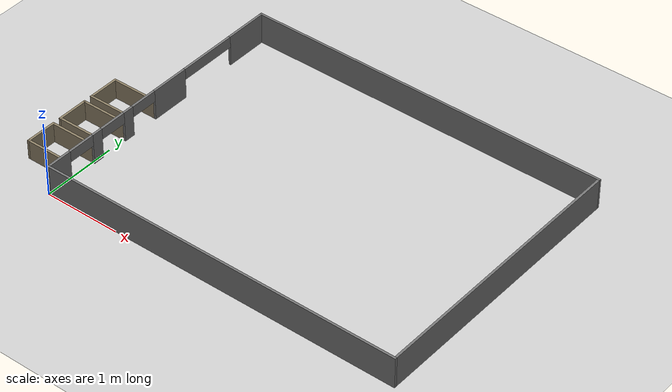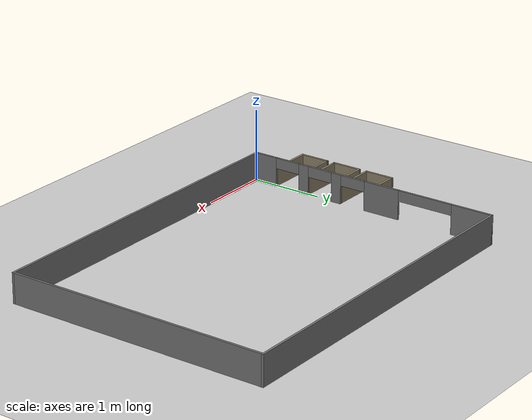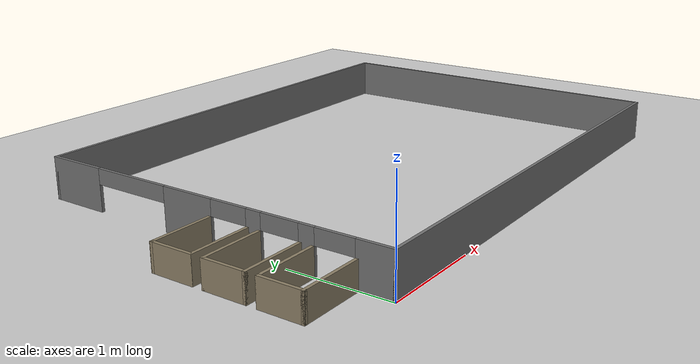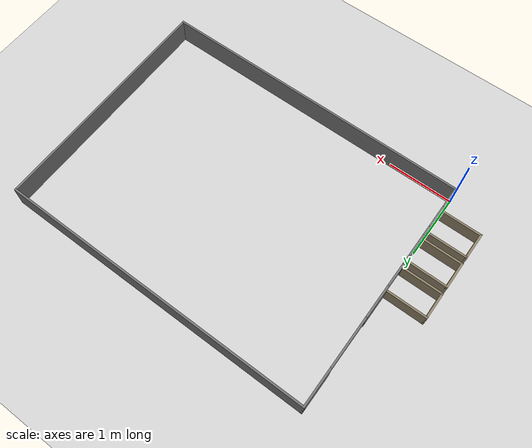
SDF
<sdf version="1.6">
 <world name="almacen_racks">
  <plugin filename="ignition-gazebo-physics-system" name="ignition::gazebo::systems::Physics"/>
  <plugin filename="ignition-gazebo-user-commands-system" name="ignition::gazebo::systems::UserCommands"/>
  <plugin filename="ignition-gazebo-scene-broadcaster-system" name="ignition::gazebo::systems::SceneBroadcaster"/>
  <light type="directional" name="sun">
   <pose>0 0 10 0 0 0</pose>
   <diffuse>0.8 0.8 0.8 1</diffuse>
   <specular>0.2 0.2 0.2 1</specular>
   <attenuation>
    <range>1000</range>
    <constant>0.9</constant>
    <linear>0.01</linear>
    <quadratic>0.001</quadratic>
   </attenuation>
   <direction>-0.5 0.1 -0.9</direction>
  </light>
  <model name="ground_plane">
   <static>true</static>
   <link name="link">
    <collision name="col">
     <geometry><plane><normal>0 0 1</normal><size>100 100</size></plane></geometry>
    </collision>
    <visual name="vis">
     <geometry><plane><normal>0 0 1</normal><size>100 100</size></plane></geometry>
     <material><ambient>0.8 0.8 0.8 1</ambient><diffuse>0.8 0.8 0.8 1</diffuse></material>
    </visual>
   </link>
  </model>
  <model name="pared_oeste">
   <static>true</static>
   <pose>2.4400 3.6750 0.2050 0 0 0</pose>
   <link name="link">
    <collision name="col"><geometry><box><size>4.8800 0.0300 0.4100</size></box></geometry></collision>
    <visual name="vis">
     <geometry><box><size>4.8800 0.0300 0.4100</size></box></geometry>
     <material><ambient>0.45 0.45 0.45 1</ambient><diffuse>0.45 0.45 0.45 1</diffuse></material>
    </visual>
   </link>
  </model>
  <model name="pared_este">
   <static>true</static>
   <pose>2.4400 0.0150 0.2050 0 0 0</pose>
   <link name="link">
    <collision name="col"><geometry><box><size>4.8800 0.0300 0.4100</size></box></geometry></collision>
    <visual name="vis">
     <geometry><box><size>4.8800 0.0300 0.4100</size></box></geometry>
     <material><ambient>0.45 0.45 0.45 1</ambient><diffuse>0.45 0.45 0.45 1</diffuse></material>
    </visual>
   </link>
  </model>
  <model name="pared_norte">
   <static>true</static>
   <pose>4.8650 1.8450 0.2050 0 0 0</pose>
   <link name="link">
    <collision name="col"><geometry><box><size>0.0300 3.6300 0.4100</size></box></geometry></collision>
    <visual name="vis">
     <geometry><box><size>0.0300 3.6300 0.4100</size></box></geometry>
     <material><ambient>0.45 0.45 0.45 1</ambient><diffuse>0.45 0.45 0.45 1</diffuse></material>
    </visual>
   </link>
  </model>
  <model name="pared_sur_a">
   <static>true</static>
   <pose>0.0150 0.1750 0.2050 0 0 0</pose>
   <link name="link">
    <collision name="col"><geometry><box><size>0.0300 0.3500 0.4100</size></box></geometry></collision>
    <visual name="vis">
     <geometry><box><size>0.0300 0.3500 0.4100</size></box></geometry>
     <material><ambient>0.45 0.45 0.45 1</ambient><diffuse>0.45 0.45 0.45 1</diffuse></material>
    </visual>
   </link>
  </model>
  <model name="dintel_1">
   <static>true</static>
   <pose>0.0150 0.5350 0.3350 0 0 0</pose>
   <link name="link">
    <collision name="col"><geometry><box><size>0.0300 0.3700 0.1500</size></box></geometry></collision>
    <visual name="vis">
     <geometry><box><size>0.0300 0.3700 0.1500</size></box></geometry>
     <material><ambient>0.45 0.45 0.45 1</ambient><diffuse>0.45 0.45 0.45 1</diffuse></material>
    </visual>
   </link>
  </model>
  <model name="dock_1_izq">
   <static>true</static>
   <pose>-0.3100 0.3350 0.1300 0 0 0</pose>
   <link name="link">
    <collision name="col"><geometry><box><size>0.6200 0.0300 0.2600</size></box></geometry></collision>
    <visual name="vis">
     <geometry><box><size>0.6200 0.0300 0.2600</size></box></geometry>
     <material><ambient>0.55 0.50 0.40 1</ambient><diffuse>0.55 0.50 0.40 1</diffuse></material>
    </visual>
   </link>
  </model>
  <model name="dock_1_der">
   <static>true</static>
   <pose>-0.3100 0.7350 0.1300 0 0 0</pose>
   <link name="link">
    <collision name="col"><geometry><box><size>0.6200 0.0300 0.2600</size></box></geometry></collision>
    <visual name="vis">
     <geometry><box><size>0.6200 0.0300 0.2600</size></box></geometry>
     <material><ambient>0.55 0.50 0.40 1</ambient><diffuse>0.55 0.50 0.40 1</diffuse></material>
    </visual>
   </link>
  </model>
  <model name="dock_1_frente">
   <static>true</static>
   <pose>-0.6050 0.5350 0.1300 0 0 0</pose>
   <link name="link">
    <collision name="col"><geometry><box><size>0.0300 0.4300 0.2600</size></box></geometry></collision>
    <visual name="vis">
     <geometry><box><size>0.0300 0.4300 0.2600</size></box></geometry>
     <material><ambient>0.55 0.50 0.40 1</ambient><diffuse>0.55 0.50 0.40 1</diffuse></material>
    </visual>
   </link>
  </model>
  <model name="pared_sur_b">
   <static>true</static>
   <pose>0.0150 0.7950 0.2050 0 0 0</pose>
   <link name="link">
    <collision name="col"><geometry><box><size>0.0300 0.1500 0.4100</size></box></geometry></collision>
    <visual name="vis">
     <geometry><box><size>0.0300 0.1500 0.4100</size></box></geometry>
     <material><ambient>0.45 0.45 0.45 1</ambient><diffuse>0.45 0.45 0.45 1</diffuse></material>
    </visual>
   </link>
  </model>
  <model name="dintel_2">
   <static>true</static>
   <pose>0.0150 1.0550 0.3350 0 0 0</pose>
   <link name="link">
    <collision name="col"><geometry><box><size>0.0300 0.3700 0.1500</size></box></geometry></collision>
    <visual name="vis">
     <geometry><box><size>0.0300 0.3700 0.1500</size></box></geometry>
     <material><ambient>0.45 0.45 0.45 1</ambient><diffuse>0.45 0.45 0.45 1</diffuse></material>
    </visual>
   </link>
  </model>
  <model name="dock_2_izq">
   <static>true</static>
   <pose>-0.3100 0.8550 0.1300 0 0 0</pose>
   <link name="link">
    <collision name="col"><geometry><box><size>0.6200 0.0300 0.2600</size></box></geometry></collision>
    <visual name="vis">
     <geometry><box><size>0.6200 0.0300 0.2600</size></box></geometry>
     <material><ambient>0.55 0.50 0.40 1</ambient><diffuse>0.55 0.50 0.40 1</diffuse></material>
    </visual>
   </link>
  </model>
  <model name="dock_2_der">
   <static>true</static>
   <pose>-0.3100 1.2550 0.1300 0 0 0</pose>
   <link name="link">
    <collision name="col"><geometry><box><size>0.6200 0.0300 0.2600</size></box></geometry></collision>
    <visual name="vis">
     <geometry><box><size>0.6200 0.0300 0.2600</size></box></geometry>
     <material><ambient>0.55 0.50 0.40 1</ambient><diffuse>0.55 0.50 0.40 1</diffuse></material>
    </visual>
   </link>
  </model>
  <model name="dock_2_frente">
   <static>true</static>
   <pose>-0.6050 1.0550 0.1300 0 0 0</pose>
   <link name="link">
    <collision name="col"><geometry><box><size>0.0300 0.4300 0.2600</size></box></geometry></collision>
    <visual name="vis">
     <geometry><box><size>0.0300 0.4300 0.2600</size></box></geometry>
     <material><ambient>0.55 0.50 0.40 1</ambient><diffuse>0.55 0.50 0.40 1</diffuse></material>
    </visual>
   </link>
  </model>
  <model name="pared_sur_c">
   <static>true</static>
   <pose>0.0150 1.3150 0.2050 0 0 0</pose>
   <link name="link">
    <collision name="col"><geometry><box><size>0.0300 0.1500 0.4100</size></box></geometry></collision>
    <visual name="vis">
     <geometry><box><size>0.0300 0.1500 0.4100</size></box></geometry>
     <material><ambient>0.45 0.45 0.45 1</ambient><diffuse>0.45 0.45 0.45 1</diffuse></material>
    </visual>
   </link>
  </model>
  <model name="dintel_3">
   <static>true</static>
   <pose>0.0150 1.5750 0.3350 0 0 0</pose>
   <link name="link">
    <collision name="col"><geometry><box><size>0.0300 0.3700 0.1500</size></box></geometry></collision>
    <visual name="vis">
     <geometry><box><size>0.0300 0.3700 0.1500</size></box></geometry>
     <material><ambient>0.45 0.45 0.45 1</ambient><diffuse>0.45 0.45 0.45 1</diffuse></material>
    </visual>
   </link>
  </model>
  <model name="dock_3_izq">
   <static>true</static>
   <pose>-0.3100 1.3750 0.1300 0 0 0</pose>
   <link name="link">
    <collision name="col"><geometry><box><size>0.6200 0.0300 0.2600</size></box></geometry></collision>
    <visual name="vis">
     <geometry><box><size>0.6200 0.0300 0.2600</size></box></geometry>
     <material><ambient>0.55 0.50 0.40 1</ambient><diffuse>0.55 0.50 0.40 1</diffuse></material>
    </visual>
   </link>
  </model>
  <model name="dock_3_der">
   <static>true</static>
   <pose>-0.3100 1.7750 0.1300 0 0 0</pose>
   <link name="link">
    <collision name="col"><geometry><box><size>0.6200 0.0300 0.2600</size></box></geometry></collision>
    <visual name="vis">
     <geometry><box><size>0.6200 0.0300 0.2600</size></box></geometry>
     <material><ambient>0.55 0.50 0.40 1</ambient><diffuse>0.55 0.50 0.40 1</diffuse></material>
    </visual>
   </link>
  </model>
  <model name="dock_3_frente">
   <static>true</static>
   <pose>-0.6050 1.5750 0.1300 0 0 0</pose>
   <link name="link">
    <collision name="col"><geometry><box><size>0.0300 0.4300 0.2600</size></box></geometry></collision>
    <visual name="vis">
     <geometry><box><size>0.0300 0.4300 0.2600</size></box></geometry>
     <material><ambient>0.55 0.50 0.40 1</ambient><diffuse>0.55 0.50 0.40 1</diffuse></material>
    </visual>
   </link>
  </model>
  <model name="pared_sur_d">
   <static>true</static>
   <pose>0.0150 2.0250 0.2050 0 0 0</pose>
   <link name="link">
    <collision name="col"><geometry><box><size>0.0300 0.5300 0.4100</size></box></geometry></collision>
    <visual name="vis">
     <geometry><box><size>0.0300 0.5300 0.4100</size></box></geometry>
     <material><ambient>0.45 0.45 0.45 1</ambient><diffuse>0.45 0.45 0.45 1</diffuse></material>
    </visual>
   </link>
  </model>
  <model name="dintel_4">
   <static>true</static>
   <pose>0.0150 2.6900 0.3350 0 0 0</pose>
   <link name="link">
    <collision name="col"><geometry><box><size>0.0300 0.8000 0.1500</size></box></geometry></collision>
    <visual name="vis">
     <geometry><box><size>0.0300 0.8000 0.1500</size></box></geometry>
     <material><ambient>0.45 0.45 0.45 1</ambient><diffuse>0.45 0.45 0.45 1</diffuse></material>
    </visual>
   </link>
  </model>
  <model name="pared_sur_e">
   <static>true</static>
   <pose>0.0150 3.3900 0.2050 0 0 0</pose>
   <link name="link">
    <collision name="col"><geometry><box><size>0.0300 0.6000 0.4100</size></box></geometry></collision>
    <visual name="vis">
     <geometry><box><size>0.0300 0.6000 0.4100</size></box></geometry>
     <material><ambient>0.45 0.45 0.45 1</ambient><diffuse>0.45 0.45 0.45 1</diffuse></material>
    </visual>
   </link>
  </model>
 </world>
</sdf>
